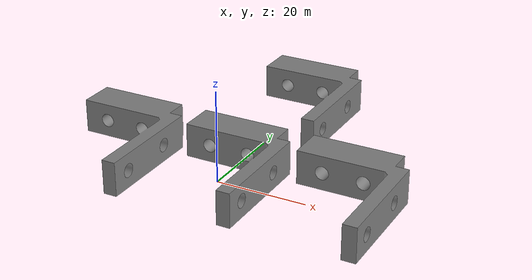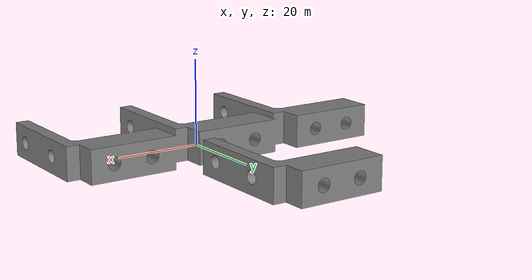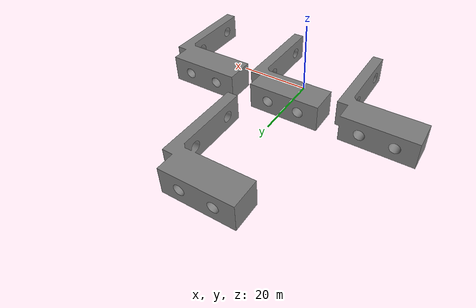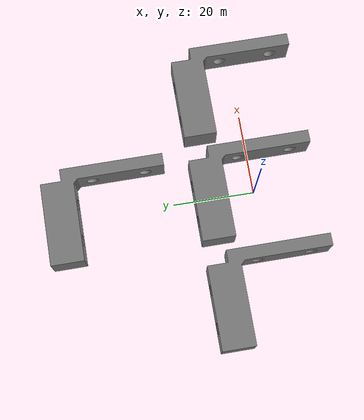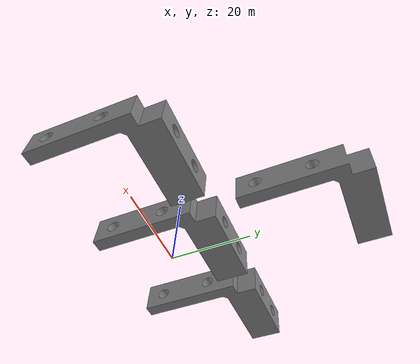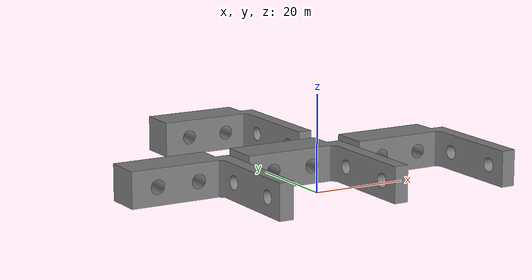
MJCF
<mujoco model="FabConvert.com_servo_brackets_x4">
  <default>
    <default class="visual">
      <geom group="2" type="mesh" contype="0" conaffinity="0"/>
    </default>
    <default class="collision">
      <geom group="3" type="mesh"/>
    </default>
  </default>
  <asset>
    <mesh file="FabConvert.com_servo_brackets_x4.obj"/>
  </asset>
  <worldbody>
    <body name="FabConvert.com_servo_brackets_x4">
      <geom mesh="FabConvert.com_servo_brackets_x4" class="visual"/>
      <geom mesh="FabConvert.com_servo_brackets_x4" class="collision"/>
    </body>
  </worldbody>
</mujoco>
